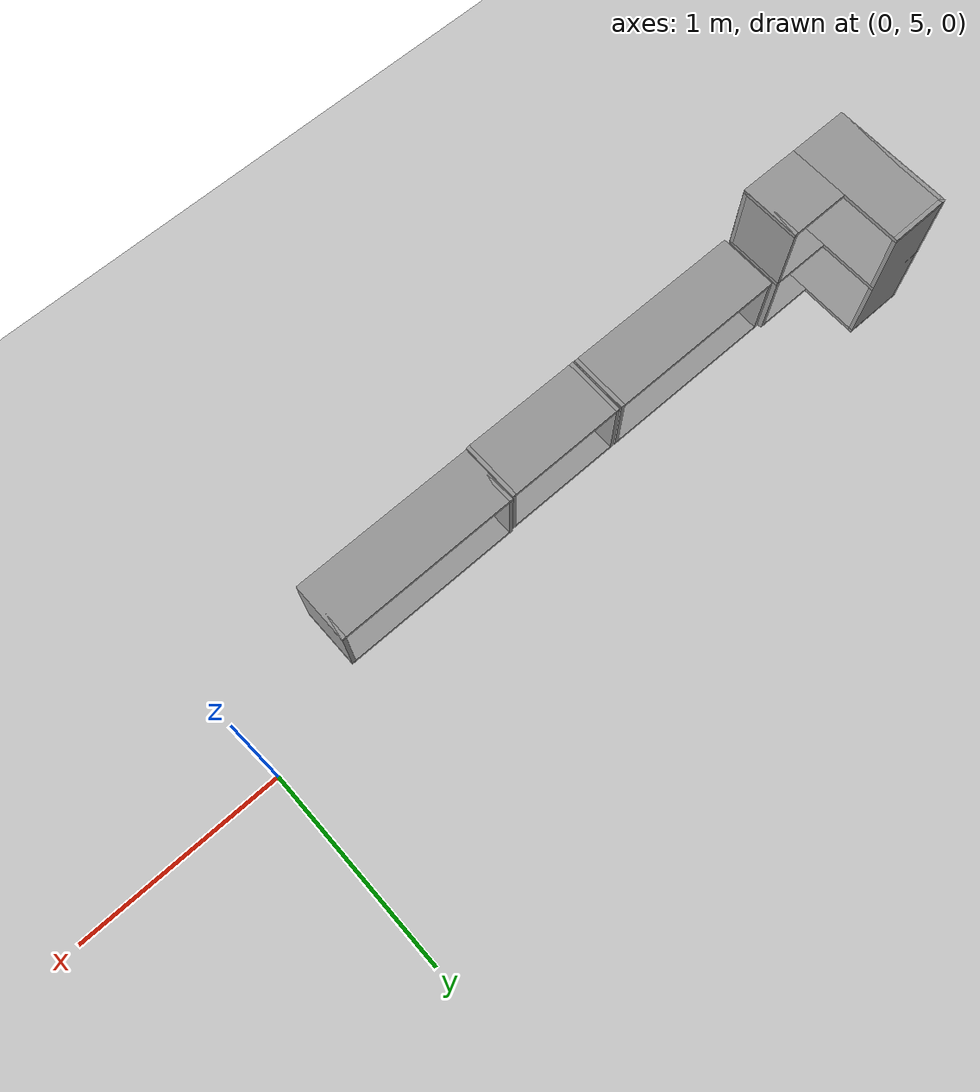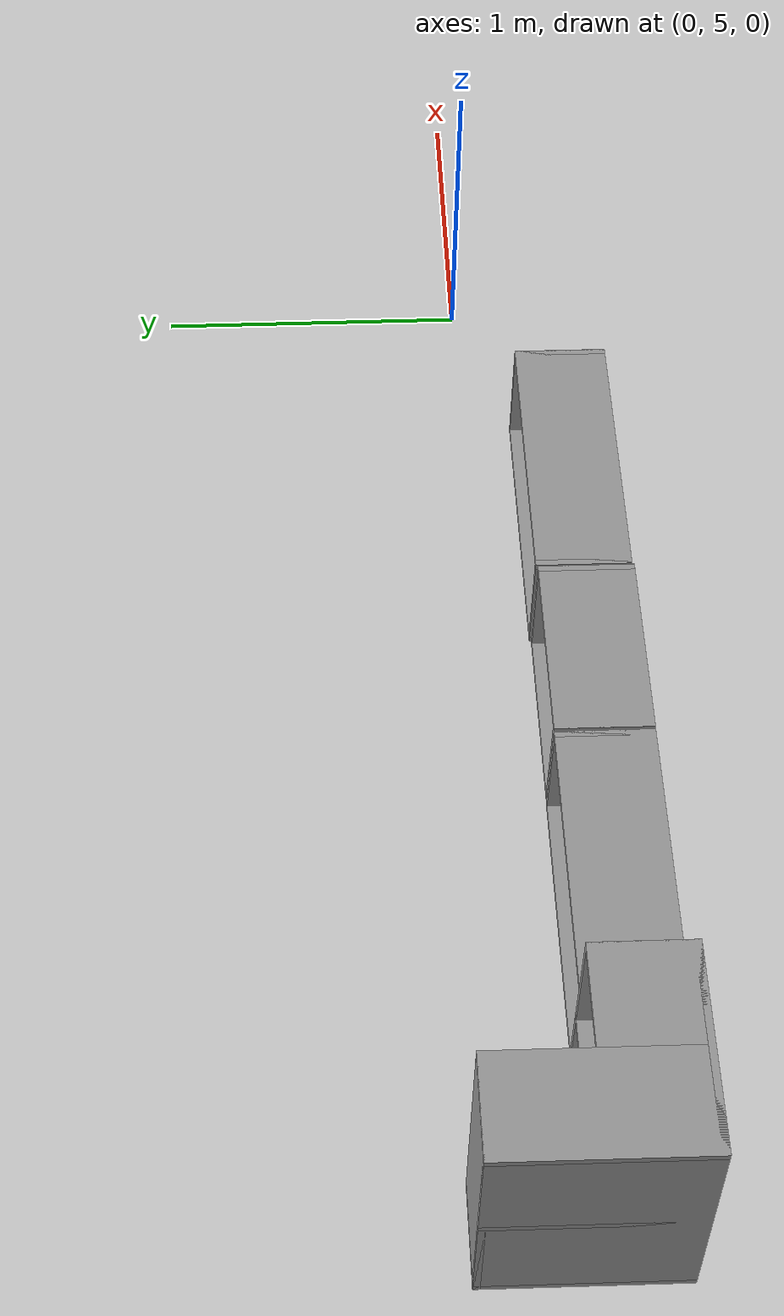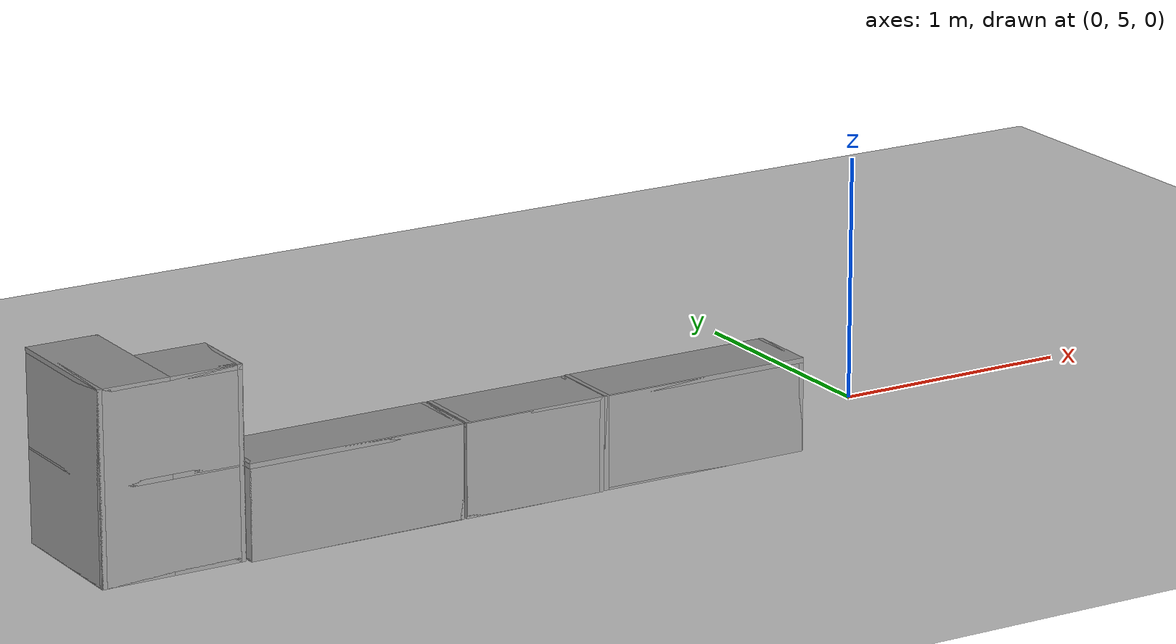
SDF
<sdf version="1.7">
 <world name="default">
  <model name="ground_plane">
   <static>1</static>
   <link name="link">
    <collision name="collision">
     <geometry><plane><normal>0 0 1</normal><size>100 100</size></plane></geometry>
     <surface><friction><ode><mu>100</mu><mu2>50</mu2></ode></friction></surface>
    </collision>
    <visual name="visual">
     <cast_shadows>0</cast_shadows>
     <geometry><plane><normal>0 0 1</normal><size>100 100</size></plane></geometry>
     <material>
      <script><uri>file://media/materials/scripts/gazebo.material</uri><name>Gazebo/Grey</name></script>
     </material>
    </visual>
   </link>
  </model>
  <model name="Wall_Cabinet_Coin_24x30W">
   <link name="Wall_10">
    <pose>0.286 -0.148 0.384 0 -0 0</pose>
    <inertial>
     <mass>2.1259</mass>
     <inertia><ixx>0.0158</ixx><iyy>0.1202</iyy><izz>0.1046</izz><ixy>0</ixy><ixz>0</ixz><iyz>0</iyz></inertia>
    </inertial>
    <collision name="Wall_10_Collision"><geometry><box><size>0.02 0.296 0.768</size></box></geometry></collision>
    <visual name="Wall_10_Visual">
     <geometry><box><size>0.02 0.296 0.768</size></box></geometry>
     <material>
      <script><uri>file://media/materials/scripts/gazebo.material</uri><name>Gazebo/Grey</name></script>
      <ambient>1 1 1 1</ambient>
     </material>
    </visual>
   </link>
   <joint name="10_16" type="fixed">
    <pose>0 0 -0.374 0 -0 0</pose>
    <parent>Wall_16</parent>
    <child>Wall_10</child>
    <axis><xyz>1 0 0</xyz><limit><lower>-1e+16</lower><upper>1e+16</upper></limit></axis>
   </joint>
   <joint name="10_14" type="fixed">
    <parent>Wall_14</parent>
    <child>Wall_10</child>
    <axis><xyz>1 0 0</xyz><limit><lower>-1e+16</lower><upper>1e+16</upper></limit></axis>
   </joint>
   <joint name="10_12" type="fixed">
    <pose>0 0 0.374 0 -0 0</pose>
    <parent>Wall_12</parent>
    <child>Wall_10</child>
    <axis><xyz>1 0 0</xyz><limit><lower>-1e+16</lower><upper>1e+16</upper></limit></axis>
   </joint>
   <joint name="10_29" type="fixed">
    <pose>0 -0.148 0 0 -0 0</pose>
    <parent>Wall_29</parent>
    <child>Wall_10</child>
    <axis><xyz>1 0 0</xyz><limit><lower>-1e+16</lower><upper>1e+16</upper></limit></axis>
   </joint>
   <link name="Wall_12">
    <pose>0.148 -0.148 0.758 0 -0 0</pose>
    <inertial>
     <mass>0.8802</mass>
     <inertia><ixx>0.0065</ixx><iyy>0.0139</iyy><izz>0.0074</izz><ixy>0</ixy><ixz>0</ixz><iyz>0</iyz></inertia>
    </inertial>
    <collision name="Wall_12_Collision"><geometry><box><size>0.296 0.296 0.02</size></box></geometry></collision>
    <visual name="Wall_12_Visual">
     <geometry><box><size>0.296 0.296 0.02</size></box></geometry>
     <material>
      <script><uri>file://media/materials/scripts/gazebo.material</uri><name>Gazebo/Grey</name></script>
      <ambient>1 1 1 1</ambient>
     </material>
    </visual>
   </link>
   <joint name="12_29" type="fixed">
    <pose>0 -0.148 0 0 -0 0</pose>
    <parent>Wall_29</parent>
    <child>Wall_12</child>
    <axis><xyz>0 0 1</xyz><limit><lower>-1e+16</lower><upper>1e+16</upper></limit></axis>
   </joint>
   <link name="Wall_14">
    <pose>0.148 -0.148 0.384 0 -0 0</pose>
    <inertial>
     <mass>0.8802</mass>
     <inertia><ixx>0.0065</ixx><iyy>0.0139</iyy><izz>0.0074</izz><ixy>0</ixy><ixz>0</ixz><iyz>0</iyz></inertia>
    </inertial>
    <collision name="Wall_14_Collision"><geometry><box><size>0.296 0.296 0.02</size></box></geometry></collision>
    <visual name="Wall_14_Visual">
     <geometry><box><size>0.296 0.296 0.02</size></box></geometry>
     <material>
      <script><uri>file://media/materials/scripts/gazebo.material</uri><name>Gazebo/Grey</name></script>
      <ambient>1 1 1 1</ambient>
     </material>
    </visual>
   </link>
   <joint name="14_29" type="fixed">
    <pose>0 -0.148 0 0 -0 0</pose>
    <parent>Wall_29</parent>
    <child>Wall_14</child>
    <axis><xyz>0 1 0</xyz><limit><lower>-1e+16</lower><upper>1e+16</upper></limit></axis>
   </joint>
   <link name="Wall_16">
    <pose>0.148 -0.148 0.01 0 -0 0</pose>
    <inertial>
     <mass>0.8802</mass>
     <inertia><ixx>0.0065</ixx><iyy>0.0139</iyy><izz>0.0074</izz><ixy>0</ixy><ixz>0</ixz><iyz>0</iyz></inertia>
    </inertial>
    <collision name="Wall_16_Collision"><geometry><box><size>0.296 0.296 0.02</size></box></geometry></collision>
    <visual name="Wall_16_Visual">
     <geometry><box><size>0.296 0.296 0.02</size></box></geometry>
     <material>
      <script><uri>file://media/materials/scripts/gazebo.material</uri><name>Gazebo/Grey</name></script>
      <ambient>1 1 1 1</ambient>
     </material>
    </visual>
   </link>
   <joint name="16_29" type="fixed">
    <pose>0 -0.148 0 0 -0 0</pose>
    <parent>Wall_29</parent>
    <child>Wall_16</child>
    <axis><xyz>0 1 0</xyz><limit><lower>-1e+16</lower><upper>1e+16</upper></limit></axis>
   </joint>
   <link name="Wall_18">
    <pose>-0.148 0 0.01 0 -0 0</pose>
    <inertial>
     <mass>1.6525</mass>
     <inertia><ixx>0.0491</ixx><iyy>0.0613</iyy><izz>0.0123</izz><ixy>0</ixy><ixz>0</ixz><iyz>0</iyz></inertia>
    </inertial>
    <collision name="Wall_18_Collision"><geometry><box><size>0.296 0.592 0.02</size></box></geometry></collision>
    <visual name="Wall_18_Visual">
     <geometry><box><size>0.296 0.592 0.02</size></box></geometry>
     <material>
      <script><uri>file://media/materials/scripts/gazebo.material</uri><name>Gazebo/Grey</name></script>
      <ambient>1 1 1 1</ambient>
     </material>
    </visual>
   </link>
   <joint name="18_16" type="fixed">
    <pose>0.148 -0.148 0 0 -0 0</pose>
    <parent>Wall_16</parent>
    <child>Wall_18</child>
    <axis><xyz>1 0 0</xyz><limit><lower>-1e+16</lower><upper>1e+16</upper></limit></axis>
   </joint>
   <joint name="18_29" type="fixed">
    <pose>0 -0.296 0 0 -0 0</pose>
    <parent>Wall_29</parent>
    <child>Wall_18</child>
    <axis><xyz>0 1 0</xyz><limit><lower>-1e+16</lower><upper>1e+16</upper></limit></axis>
   </joint>
   <joint name="18_27" type="fixed">
    <pose>-0.148 0 0 0 -0 0</pose>
    <parent>Wall_27</parent>
    <child>Wall_18</child>
    <axis><xyz>1 0 0</xyz><limit><lower>-1e+16</lower><upper>1e+16</upper></limit></axis>
   </joint>
   <joint name="18_30" type="fixed">
    <pose>0 0.296 0 0 -0 0</pose>
    <parent>Wall_30</parent>
    <child>Wall_18</child>
    <axis><xyz>0 1 0</xyz><limit><lower>-1e+16</lower><upper>1e+16</upper></limit></axis>
   </joint>
   <link name="Wall_20">
    <pose>-0.148 0 0.384 0 -0 0</pose>
    <inertial>
     <mass>1.6525</mass>
     <inertia><ixx>0.0491</ixx><iyy>0.0613</iyy><izz>0.0123</izz><ixy>0</ixy><ixz>0</ixz><iyz>0</iyz></inertia>
    </inertial>
    <collision name="Wall_20_Collision"><geometry><box><size>0.296 0.592 0.02</size></box></geometry></collision>
    <visual name="Wall_20_Visual">
     <geometry><box><size>0.296 0.592 0.02</size></box></geometry>
     <material>
      <script><uri>file://media/materials/scripts/gazebo.material</uri><name>Gazebo/Grey</name></script>
      <ambient>1 1 1 1</ambient>
     </material>
    </visual>
   </link>
   <joint name="20_14" type="fixed">
    <pose>0.148 -0.148 0 0 -0 0</pose>
    <parent>Wall_14</parent>
    <child>Wall_20</child>
    <axis><xyz>1 0 0</xyz><limit><lower>-1e+16</lower><upper>1e+16</upper></limit></axis>
   </joint>
   <joint name="20_29" type="fixed">
    <pose>0 -0.296 0 0 -0 0</pose>
    <parent>Wall_29</parent>
    <child>Wall_20</child>
    <axis><xyz>0 1 0</xyz><limit><lower>-1e+16</lower><upper>1e+16</upper></limit></axis>
   </joint>
   <joint name="20_27" type="fixed">
    <pose>-0.148 0 0 0 -0 0</pose>
    <parent>Wall_27</parent>
    <child>Wall_20</child>
    <axis><xyz>1 0 0</xyz><limit><lower>-1e+16</lower><upper>1e+16</upper></limit></axis>
   </joint>
   <joint name="20_30" type="fixed">
    <pose>0 0.296 0 0 -0 0</pose>
    <parent>Wall_30</parent>
    <child>Wall_20</child>
    <axis><xyz>0 1 0</xyz><limit><lower>-1e+16</lower><upper>1e+16</upper></limit></axis>
   </joint>
   <link name="Wall_22">
    <pose>-0.148 0 0.758 0 -0 0</pose>
    <inertial>
     <mass>1.6525</mass>
     <inertia><ixx>0.0491</ixx><iyy>0.0613</iyy><izz>0.0123</izz><ixy>0</ixy><ixz>0</ixz><iyz>0</iyz></inertia>
    </inertial>
    <collision name="Wall_22_Collision"><geometry><box><size>0.296 0.592 0.02</size></box></geometry></collision>
    <visual name="Wall_22_Visual">
     <geometry><box><size>0.296 0.592 0.02</size></box></geometry>
     <material>
      <script><uri>file://media/materials/scripts/gazebo.material</uri><name>Gazebo/Grey</name></script>
      <ambient>1 1 1 1</ambient>
     </material>
    </visual>
   </link>
   <joint name="22_12" type="fixed">
    <pose>0.148 -0.148 0 0 -0 0</pose>
    <parent>Wall_12</parent>
    <child>Wall_22</child>
    <axis><xyz>1 0 0</xyz><limit><lower>-1e+16</lower><upper>1e+16</upper></limit></axis>
   </joint>
   <joint name="22_29" type="fixed">
    <pose>0 -0.296 0 0 -0 0</pose>
    <parent>Wall_29</parent>
    <child>Wall_22</child>
    <axis><xyz>0 1 0</xyz><limit><lower>-1e+16</lower><upper>1e+16</upper></limit></axis>
   </joint>
   <joint name="22_27" type="fixed">
    <pose>-0.148 0 0 0 -0 0</pose>
    <parent>Wall_27</parent>
    <child>Wall_22</child>
    <axis><xyz>1 0 0</xyz><limit><lower>-1e+16</lower><upper>1e+16</upper></limit></axis>
   </joint>
   <joint name="22_30" type="fixed">
    <pose>0 0.296 0 0 -0 0</pose>
    <parent>Wall_30</parent>
    <child>Wall_22</child>
    <axis><xyz>0 1 0</xyz><limit><lower>-1e+16</lower><upper>1e+16</upper></limit></axis>
   </joint>
   <link name="Wall_27">
    <pose>-0.286 0 0.384 0 -0 0</pose>
    <inertial>
     <mass>4.2589</mass>
     <inertia><ixx>0.1266</ixx><iyy>0.3358</iyy><izz>0.2095</izz><ixy>0</ixy><ixz>0</ixz><iyz>0</iyz></inertia>
    </inertial>
    <collision name="Wall_27_Collision"><geometry><box><size>0.02 0.592 0.768</size></box></geometry></collision>
    <visual name="Wall_27_Visual">
     <geometry><box><size>0.02 0.592 0.768</size></box></geometry>
     <material>
      <script><uri>file://media/materials/scripts/gazebo.material</uri><name>Gazebo/Grey</name></script>
      <ambient>1 1 1 1</ambient>
     </material>
    </visual>
   </link>
   <joint name="27_30" type="fixed">
    <pose>0 0.296 0 0 -0 0</pose>
    <parent>Wall_30</parent>
    <child>Wall_27</child>
    <axis><xyz>0 1 0</xyz><limit><lower>-1e+16</lower><upper>1e+16</upper></limit></axis>
   </joint>
   <link name="Wall_29">
    <pose>0 -0.286 0.384 0 -0 0</pose>
    <inertial>
     <mass>4.3176</mass>
     <inertia><ixx>0.134</ixx><iyy>0.2091</iyy><izz>0.3428</izz><ixy>0</ixy><ixz>0</ixz><iyz>0</iyz></inertia>
    </inertial>
    <collision name="Wall_29_Collision"><geometry><box><size>0.592 0.02 0.768</size></box></geometry></collision>
    <visual name="Wall_29_Visual">
     <geometry><box><size>0.592 0.02 0.768</size></box></geometry>
     <material>
      <script><uri>file://media/materials/scripts/gazebo.material</uri><name>Gazebo/Grey</name></script>
      <ambient>1 1 1 1</ambient>
     </material>
    </visual>
   </link>
   <link name="Wall_30">
    <pose>-0.148 0.286 0.384 0 -0 0</pose>
    <inertial>
     <mass>2.1093</mass>
     <inertia><ixx>0.1021</ixx><iyy>0.0157</iyy><izz>0.1177</izz><ixy>0</ixy><ixz>0</ixz><iyz>0</iyz></inertia>
    </inertial>
    <collision name="Wall_30_Collision"><geometry><box><size>0.296 0.02 0.768</size></box></geometry></collision>
    <visual name="Wall_30_Visual">
     <geometry><box><size>0.296 0.02 0.768</size></box></geometry>
     <material>
      <script><uri>file://media/materials/scripts/gazebo.material</uri><name>Gazebo/Grey</name></script>
      <ambient>1 1 1 1</ambient>
     </material>
    </visual>
   </link>
   <static>1</static>
   <pose>-3.27799 4.84677 0 0 -0 0</pose>
  </model>
  <model name="Wall_Cabinet_36x15W">
   <link name="Wall_0">
    <pose>0 0 0.01 0 -0 0</pose>
    <inertial>
     <mass>1.9796</mass>
     <inertia><ixx>0.0145</ixx><iyy>0.1511</iyy><izz>0.1367</izz><ixy>0</ixy><ixz>0</ixz><iyz>0</iyz></inertia>
    </inertial>
    <collision name="Wall_0_Collision"><geometry><box><size>0.91 0.296 0.02</size></box></geometry></collision>
    <visual name="Wall_0_Visual">
     <geometry><box><size>0.91 0.296 0.02</size></box></geometry>
     <material>
      <script><uri>file://media/materials/scripts/gazebo.material</uri><name>Gazebo/Grey</name></script>
      <ambient>1 1 1 1</ambient>
     </material>
    </visual>
   </link>
   <joint name="0_2" type="fixed">
    <pose>-0.455 0 0 0 -0 0</pose>
    <parent>Wall_2</parent>
    <child>Wall_0</child>
    <axis><xyz>0 0 1</xyz><limit><lower>-1e+16</lower><upper>1e+16</upper></limit></axis>
   </joint>
   <joint name="0_4" type="fixed">
    <pose>0.455 0 0 0 -0 0</pose>
    <parent>Wall_4</parent>
    <child>Wall_0</child>
    <axis><xyz>0 0 1</xyz><limit><lower>-1e+16</lower><upper>1e+16</upper></limit></axis>
   </joint>
   <joint name="0_8" type="fixed">
    <pose>0 -0.148 0 0 -0 0</pose>
    <parent>Wall_8</parent>
    <child>Wall_0</child>
    <axis><xyz>0 0 1</xyz><limit><lower>-1e+16</lower><upper>1e+16</upper></limit></axis>
   </joint>
   <link name="Wall_2">
    <pose>-0.445 0 0.192 0 -0 0</pose>
    <inertial>
     <mass>0.8353</mass>
     <inertia><ixx>0.0061</ixx><iyy>0.0164</iyy><izz>0.0103</izz><ixy>0</ixy><ixz>0</ixz><iyz>0</iyz></inertia>
    </inertial>
    <collision name="Wall_2_Collision"><geometry><box><size>0.02 0.296 0.384</size></box></geometry></collision>
    <visual name="Wall_2_Visual">
     <geometry><box><size>0.02 0.296 0.384</size></box></geometry>
     <material>
      <script><uri>file://media/materials/scripts/gazebo.material</uri><name>Gazebo/Grey</name></script>
      <ambient>1 1 1 1</ambient>
     </material>
    </visual>
   </link>
   <link name="Wall_4">
    <pose>0.445 0 0.192 0 -0 0</pose>
    <inertial>
     <mass>0.8353</mass>
     <inertia><ixx>0.0061</ixx><iyy>0.0164</iyy><izz>0.0103</izz><ixy>0</ixy><ixz>0</ixz><iyz>0</iyz></inertia>
    </inertial>
    <collision name="Wall_4_Collision"><geometry><box><size>0.02 0.296 0.384</size></box></geometry></collision>
    <visual name="Wall_4_Visual">
     <geometry><box><size>0.02 0.296 0.384</size></box></geometry>
     <material>
      <script><uri>file://media/materials/scripts/gazebo.material</uri><name>Gazebo/Grey</name></script>
      <ambient>1 1 1 1</ambient>
     </material>
    </visual>
   </link>
   <link name="Wall_6">
    <pose>0 0 0.374 0 -0 0</pose>
    <inertial>
     <mass>1.9796</mass>
     <inertia><ixx>0.0145</ixx><iyy>0.1511</iyy><izz>0.1367</izz><ixy>0</ixy><ixz>0</ixz><iyz>0</iyz></inertia>
    </inertial>
    <collision name="Wall_6_Collision"><geometry><box><size>0.91 0.296 0.02</size></box></geometry></collision>
    <visual name="Wall_6_Visual">
     <geometry><box><size>0.91 0.296 0.02</size></box></geometry>
     <material>
      <script><uri>file://media/materials/scripts/gazebo.material</uri><name>Gazebo/Grey</name></script>
      <ambient>1 1 1 1</ambient>
     </material>
    </visual>
   </link>
   <joint name="6_2" type="fixed">
    <pose>-0.455 0 0 0 -0 0</pose>
    <parent>Wall_2</parent>
    <child>Wall_6</child>
    <axis><xyz>0 0 1</xyz><limit><lower>-1e+16</lower><upper>1e+16</upper></limit></axis>
   </joint>
   <joint name="6_4" type="fixed">
    <pose>0.455 0 0 0 -0 0</pose>
    <parent>Wall_4</parent>
    <child>Wall_6</child>
    <axis><xyz>0 0 1</xyz><limit><lower>-1e+16</lower><upper>1e+16</upper></limit></axis>
   </joint>
   <joint name="6_8" type="fixed">
    <pose>0 -0.148 0 0 -0 0</pose>
    <parent>Wall_8</parent>
    <child>Wall_6</child>
    <axis><xyz>0 0 1</xyz><limit><lower>-1e+16</lower><upper>1e+16</upper></limit></axis>
   </joint>
   <link name="Wall_8">
    <pose>0 -0.138 0.19 0 -0 0</pose>
    <inertial>
     <mass>2.5302</mass>
     <inertia><ixx>0.0305</ixx><iyy>0.1732</iyy><izz>0.2035</izz><ixy>0</ixy><ixz>0</ixz><iyz>0</iyz></inertia>
    </inertial>
    <collision name="Wall_8_Collision"><geometry><box><size>0.906 0.02 0.38</size></box></geometry></collision>
    <visual name="Wall_8_Visual">
     <geometry><box><size>0.906 0.02 0.38</size></box></geometry>
     <material>
      <script><uri>file://media/materials/scripts/gazebo.material</uri><name>Gazebo/Grey</name></script>
      <ambient>1 1 1 1</ambient>
     </material>
    </visual>
   </link>
   <joint name="8_2" type="fixed">
    <pose>-0.453 0 0 0 -0 0</pose>
    <parent>Wall_2</parent>
    <child>Wall_8</child>
    <axis><xyz>0 1 0</xyz><limit><lower>-1e+16</lower><upper>1e+16</upper></limit></axis>
   </joint>
   <joint name="8_4" type="fixed">
    <pose>0.453 0 0 0 -0 0</pose>
    <parent>Wall_4</parent>
    <child>Wall_8</child>
    <axis><xyz>0 1 0</xyz><limit><lower>-1e+16</lower><upper>1e+16</upper></limit></axis>
   </joint>
   <static>1</static>
   <pose>-2.51595 4.68016 0 0 -0 0</pose>
  </model>
  <model name="Wall_Cabinet_24x15W">
   <link name="Wall_41">
    <pose>0 0 0.01 0 -0 0</pose>
    <inertial>
     <mass>1.4983</mass>
     <inertia><ixx>0.011</ixx><iyy>0.0571</iyy><izz>0.0462</izz><ixy>0</ixy><ixz>0</ixz><iyz>0</iyz></inertia>
    </inertial>
    <collision name="Wall_41_Collision"><geometry><box><size>0.608 0.296 0.02</size></box></geometry></collision>
    <visual name="Wall_41_Visual">
     <geometry><box><size>0.608 0.296 0.02</size></box></geometry>
     <material>
      <script><uri>file://media/materials/scripts/gazebo.material</uri><name>Gazebo/Grey</name></script>
      <ambient>1 1 1 1</ambient>
     </material>
    </visual>
    <pose>0.000184 0.181953 0 0 -0 0</pose>
   </link>
   <joint name="41_43" type="fixed">
    <pose>-0.304 0 0 0 -0 0</pose>
    <parent>Wall_43</parent>
    <child>Wall_41</child>
    <axis><xyz>0 0 1</xyz><limit><lower>-1e+16</lower><upper>1e+16</upper></limit></axis>
   </joint>
   <joint name="41_45" type="fixed">
    <pose>0.304 0 0 0 -0 0</pose>
    <parent>Wall_45</parent>
    <child>Wall_41</child>
    <axis><xyz>0 0 1</xyz><limit><lower>-1e+16</lower><upper>1e+16</upper></limit></axis>
   </joint>
   <joint name="41_49" type="fixed">
    <pose>0 -0.148 0 0 -0 0</pose>
    <parent>Wall_49</parent>
    <child>Wall_41</child>
    <axis><xyz>0 0 1</xyz><limit><lower>-1e+16</lower><upper>1e+16</upper></limit></axis>
   </joint>
   <link name="Wall_43">
    <pose>-0.294 0 0.192 0 -0 0</pose>
    <inertial>
     <mass>0.9463</mass>
     <inertia><ixx>0.0069</ixx><iyy>0.0185</iyy><izz>0.0117</izz><ixy>0</ixy><ixz>0</ixz><iyz>0</iyz></inertia>
    </inertial>
    <collision name="Wall_43_Collision"><geometry><box><size>0.02 0.296 0.384</size></box></geometry></collision>
    <visual name="Wall_43_Visual">
     <geometry><box><size>0.02 0.296 0.384</size></box></geometry>
     <material>
      <script><uri>file://media/materials/scripts/gazebo.material</uri><name>Gazebo/Grey</name></script>
      <ambient>1 1 1 1</ambient>
     </material>
    </visual>
   </link>
   <link name="Wall_45">
    <pose>0.294 0 0.192 0 -0 0</pose>
    <inertial>
     <mass>0.9463</mass>
     <inertia><ixx>0.0069</ixx><iyy>0.0185</iyy><izz>0.0117</izz><ixy>0</ixy><ixz>0</ixz><iyz>0</iyz></inertia>
    </inertial>
    <collision name="Wall_45_Collision"><geometry><box><size>0.02 0.296 0.384</size></box></geometry></collision>
    <visual name="Wall_45_Visual">
     <geometry><box><size>0.02 0.296 0.384</size></box></geometry>
     <material>
      <script><uri>file://media/materials/scripts/gazebo.material</uri><name>Gazebo/Grey</name></script>
      <ambient>1 1 1 1</ambient>
     </material>
    </visual>
   </link>
   <link name="Wall_47">
    <pose>0 0 0.374 0 -0 0</pose>
    <inertial>
     <mass>1.4983</mass>
     <inertia><ixx>0.011</ixx><iyy>0.0571</iyy><izz>0.0462</izz><ixy>0</ixy><ixz>0</ixz><iyz>0</iyz></inertia>
    </inertial>
    <collision name="Wall_47_Collision"><geometry><box><size>0.608 0.296 0.02</size></box></geometry></collision>
    <visual name="Wall_47_Visual">
     <geometry><box><size>0.608 0.296 0.02</size></box></geometry>
     <material>
      <script><uri>file://media/materials/scripts/gazebo.material</uri><name>Gazebo/Grey</name></script>
      <ambient>1 1 1 1</ambient>
     </material>
    </visual>
   </link>
   <joint name="47_43" type="fixed">
    <pose>-0.304 0 0 0 -0 0</pose>
    <parent>Wall_43</parent>
    <child>Wall_47</child>
    <axis><xyz>0 0 1</xyz><limit><lower>-1e+16</lower><upper>1e+16</upper></limit></axis>
   </joint>
   <joint name="47_45" type="fixed">
    <pose>0.304 0 0 0 -0 0</pose>
    <parent>Wall_45</parent>
    <child>Wall_47</child>
    <axis><xyz>0 0 1</xyz><limit><lower>-1e+16</lower><upper>1e+16</upper></limit></axis>
   </joint>
   <joint name="47_49" type="fixed">
    <pose>0 -0.148 0 0 -0 0</pose>
    <parent>Wall_49</parent>
    <child>Wall_47</child>
    <axis><xyz>0 0 1</xyz><limit><lower>-1e+16</lower><upper>1e+16</upper></limit></axis>
   </joint>
   <link name="Wall_49">
    <pose>0 -0.138 0.19 0 -0 0</pose>
    <inertial>
     <mass>1.9108</mass>
     <inertia><ixx>0.0231</ixx><iyy>0.0582</iyy><izz>0.0811</izz><ixy>0</ixy><ixz>0</ixz><iyz>0</iyz></inertia>
    </inertial>
    <collision name="Wall_49_Collision"><geometry><box><size>0.604 0.02 0.38</size></box></geometry></collision>
    <visual name="Wall_49_Visual">
     <geometry><box><size>0.604 0.02 0.38</size></box></geometry>
     <material>
      <script><uri>file://media/materials/scripts/gazebo.material</uri><name>Gazebo/Grey</name></script>
      <ambient>1 1 1 1</ambient>
     </material>
    </visual>
   </link>
   <joint name="49_43" type="fixed">
    <pose>-0.302 0 0 0 -0 0</pose>
    <parent>Wall_41</parent>
    <child>Wall_49</child>
    <axis><xyz>0 1 0</xyz><limit><lower>-1e+16</lower><upper>1e+16</upper></limit></axis>
   </joint>
   <joint name="49_45" type="fixed">
    <pose>0.302 0 0 0 -0 0</pose>
    <parent>Wall_45</parent>
    <child>Wall_49</child>
    <axis><xyz>0 1 0</xyz><limit><lower>-1e+16</lower><upper>1e+16</upper></limit></axis>
   </joint>
   <static>1</static>
   <pose>-1.74821 4.67926 0 0 -0 0</pose>
  </model>
  <model name="Wall_Cabinet_36x15W_1">
   <link name="Wall_0">
    <pose>0 0 0.01 0 -0 0</pose>
    <inertial>
     <mass>1.9796</mass>
     <inertia><ixx>0.0145</ixx><iyy>0.1511</iyy><izz>0.1367</izz><ixy>0</ixy><ixz>0</ixz><iyz>0</iyz></inertia>
    </inertial>
    <collision name="Wall_0_Collision"><geometry><box><size>0.91 0.296 0.02</size></box></geometry></collision>
    <visual name="Wall_0_Visual">
     <geometry><box><size>0.91 0.296 0.02</size></box></geometry>
     <material>
      <script><uri>file://media/materials/scripts/gazebo.material</uri><name>Gazebo/Grey</name></script>
      <ambient>1 1 1 1</ambient>
     </material>
    </visual>
   </link>
   <joint name="0_2" type="fixed">
    <pose>-0.455 0 0 0 -0 0</pose>
    <parent>Wall_2</parent>
    <child>Wall_0</child>
    <axis><xyz>0 0 1</xyz><limit><lower>-1e+16</lower><upper>1e+16</upper></limit></axis>
   </joint>
   <joint name="0_4" type="fixed">
    <pose>0.455 0 0 0 -0 0</pose>
    <parent>Wall_4</parent>
    <child>Wall_0</child>
    <axis><xyz>0 0 1</xyz><limit><lower>-1e+16</lower><upper>1e+16</upper></limit></axis>
   </joint>
   <joint name="0_8" type="fixed">
    <pose>0 -0.148 0 0 -0 0</pose>
    <parent>Wall_8</parent>
    <child>Wall_0</child>
    <axis><xyz>0 0 1</xyz><limit><lower>-1e+16</lower><upper>1e+16</upper></limit></axis>
   </joint>
   <link name="Wall_2">
    <pose>-0.445 0 0.192 0 -0 0</pose>
    <inertial>
     <mass>0.8353</mass>
     <inertia><ixx>0.0061</ixx><iyy>0.0164</iyy><izz>0.0103</izz><ixy>0</ixy><ixz>0</ixz><iyz>0</iyz></inertia>
    </inertial>
    <collision name="Wall_2_Collision"><geometry><box><size>0.02 0.296 0.384</size></box></geometry></collision>
    <visual name="Wall_2_Visual">
     <geometry><box><size>0.02 0.296 0.384</size></box></geometry>
     <material>
      <script><uri>file://media/materials/scripts/gazebo.material</uri><name>Gazebo/Grey</name></script>
      <ambient>1 1 1 1</ambient>
     </material>
    </visual>
   </link>
   <link name="Wall_4">
    <pose>0.445 0 0.192 0 -0 0</pose>
    <inertial>
     <mass>0.8353</mass>
     <inertia><ixx>0.0061</ixx><iyy>0.0164</iyy><izz>0.0103</izz><ixy>0</ixy><ixz>0</ixz><iyz>0</iyz></inertia>
    </inertial>
    <collision name="Wall_4_Collision"><geometry><box><size>0.02 0.296 0.384</size></box></geometry></collision>
    <visual name="Wall_4_Visual">
     <geometry><box><size>0.02 0.296 0.384</size></box></geometry>
     <material>
      <script><uri>file://media/materials/scripts/gazebo.material</uri><name>Gazebo/Grey</name></script>
      <ambient>1 1 1 1</ambient>
     </material>
    </visual>
   </link>
   <link name="Wall_6">
    <pose>0 0 0.374 0 -0 0</pose>
    <inertial>
     <mass>1.9796</mass>
     <inertia><ixx>0.0145</ixx><iyy>0.1511</iyy><izz>0.1367</izz><ixy>0</ixy><ixz>0</ixz><iyz>0</iyz></inertia>
    </inertial>
    <collision name="Wall_6_Collision"><geometry><box><size>0.91 0.296 0.02</size></box></geometry></collision>
    <visual name="Wall_6_Visual">
     <geometry><box><size>0.91 0.296 0.02</size></box></geometry>
     <material>
      <script><uri>file://media/materials/scripts/gazebo.material</uri><name>Gazebo/Grey</name></script>
      <ambient>1 1 1 1</ambient>
     </material>
    </visual>
   </link>
   <joint name="6_2" type="fixed">
    <pose>-0.455 0 0 0 -0 0</pose>
    <parent>Wall_2</parent>
    <child>Wall_6</child>
    <axis><xyz>0 0 1</xyz><limit><lower>-1e+16</lower><upper>1e+16</upper></limit></axis>
   </joint>
   <joint name="6_4" type="fixed">
    <pose>0.455 0 0 0 -0 0</pose>
    <parent>Wall_4</parent>
    <child>Wall_6</child>
    <axis><xyz>0 0 1</xyz><limit><lower>-1e+16</lower><upper>1e+16</upper></limit></axis>
   </joint>
   <joint name="6_8" type="fixed">
    <pose>0 -0.148 0 0 -0 0</pose>
    <parent>Wall_8</parent>
    <child>Wall_6</child>
    <axis><xyz>0 0 1</xyz><limit><lower>-1e+16</lower><upper>1e+16</upper></limit></axis>
   </joint>
   <link name="Wall_8">
    <pose>0 -0.138 0.19 0 -0 0</pose>
    <inertial>
     <mass>2.5302</mass>
     <inertia><ixx>0.0305</ixx><iyy>0.1732</iyy><izz>0.2035</izz><ixy>0</ixy><ixz>0</ixz><iyz>0</iyz></inertia>
    </inertial>
    <collision name="Wall_8_Collision"><geometry><box><size>0.906 0.02 0.38</size></box></geometry></collision>
    <visual name="Wall_8_Visual">
     <geometry><box><size>0.906 0.02 0.38</size></box></geometry>
     <material>
      <script><uri>file://media/materials/scripts/gazebo.material</uri><name>Gazebo/Grey</name></script>
      <ambient>1 1 1 1</ambient>
     </material>
    </visual>
   </link>
   <joint name="8_2" type="fixed">
    <pose>-0.453 0 0 0 -0 0</pose>
    <parent>Wall_2</parent>
    <child>Wall_8</child>
    <axis><xyz>0 1 0</xyz><limit><lower>-1e+16</lower><upper>1e+16</upper></limit></axis>
   </joint>
   <joint name="8_4" type="fixed">
    <pose>0.453 0 0 0 -0 0</pose>
    <parent>Wall_4</parent>
    <child>Wall_8</child>
    <axis><xyz>0 1 0</xyz><limit><lower>-1e+16</lower><upper>1e+16</upper></limit></axis>
   </joint>
   <static>1</static>
   <pose>-0.98553 4.68534 0 0 -0 0</pose>
  </model>
 </world>
</sdf>
